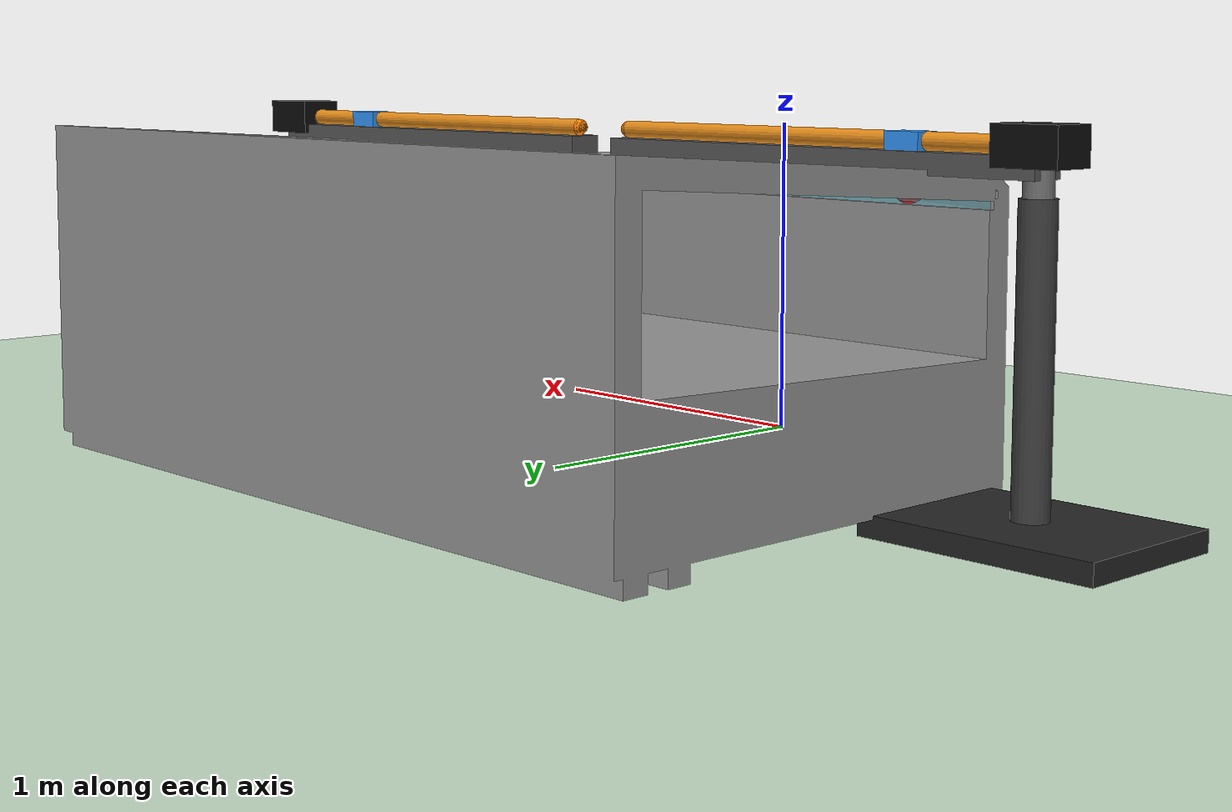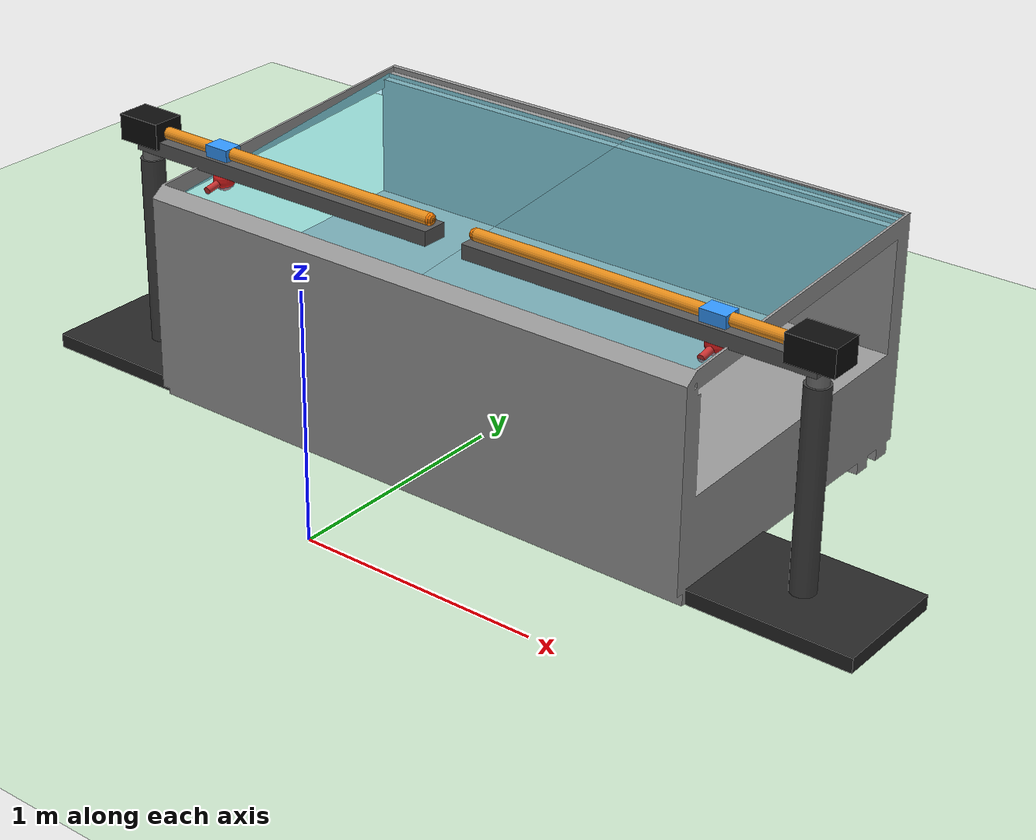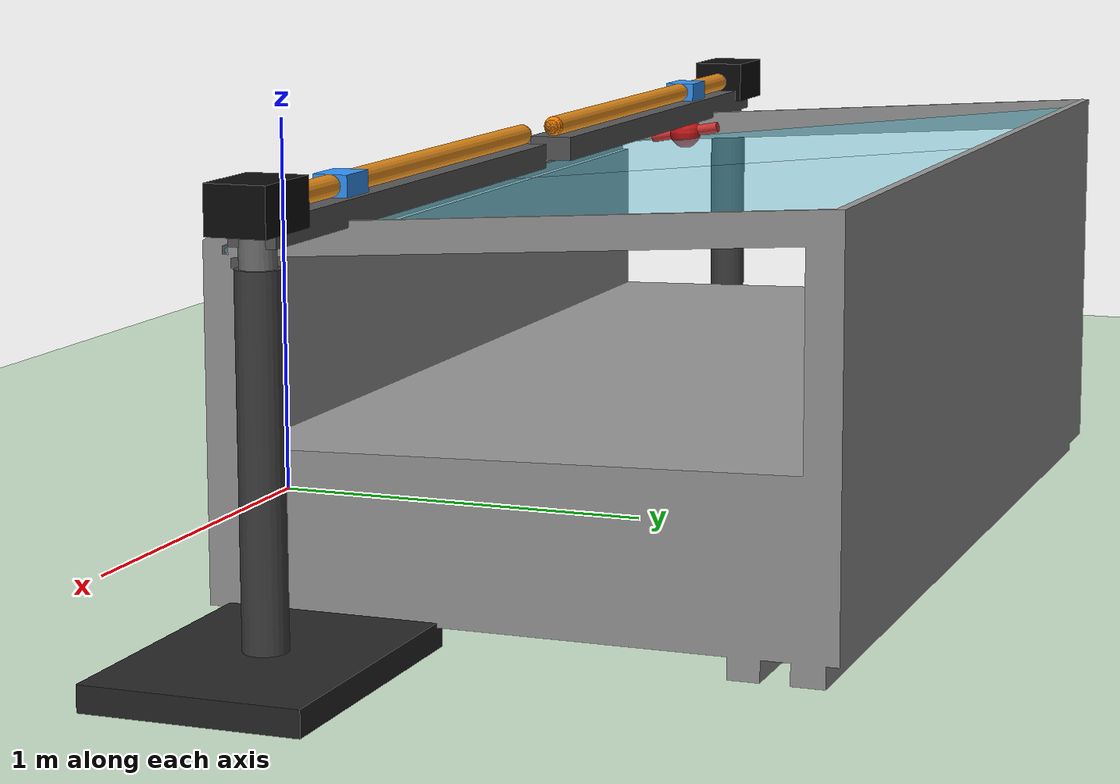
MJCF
<mujoco model="Test_sliding_door_linear_actuation_system">

  <option timestep="0.002" gravity="0 0 -9.81"/>
  <compiler angle="radian"/>

  <asset>
    <!-- Banco frigo con porte scorrevoli -->
    <mesh name="frigo_mesh" file="athen_xl_corpo.obj"/>
    <mesh name="porta_sx_mesh" file="athen_xl_portasx.obj"/>
    <mesh name="porta_dx_mesh" file="athen_xl_portadx.obj"/>
  </asset>

  <worldbody>
    <geom name="pavimento" type="plane" size="5 5 0.1" rgba="0.8 0.9 0.8 1"/>
    <light directional="true" diffuse="0.8 0.8 0.8" specular="0.2 0.2 0.2" pos="0 0 5" dir="0 0 -1" castshadow="false"/>

    <!-- Sistema meccanico lineare porta sinistra -->
    <body name="sistema_lineare_sx" pos="-1.50 0.75 0">

      <geom name="base_meccanica_sx" type="box" pos="0 0 0.03" size="0.35 0.25 0.03" rgba="0.15 0.15 0.15 1" contype="0" conaffinity="0"/>
      <geom name="colonna_fissa_sx" type="cylinder" pos="0 0 0.45" size="0.05 0.42" rgba="0.25 0.25 0.25 1" contype="0" conaffinity="0"/>

      <body name="colonna_regolabile_sx" pos="0 0 1.00">
        <inertial pos="0 0 -0.25" mass="4.0" diaginertia="0.08 0.08 0.02"/>
        <geom name="colonna_mobile_sx" type="cylinder" pos="0 0 -0.25" size="0.04 0.30" rgba="0.45 0.45 0.45 1" contype="0" conaffinity="0"/>

        <body name="testa_lineare_sx" pos="0 0 0">
          <inertial pos="0.70 0 0" mass="3.0" diaginertia="0.04 0.04 0.03"/>
          <geom name="corpo_motore_lineare_sx" type="box" pos="0 0 0" size="0.10 0.07 0.055" rgba="0.05 0.05 0.05 1" contype="0" conaffinity="0"/>
          <site name="inizio_guida_lineare_sx" pos="0 0 0" size="0.035" rgba="0 0 1 1"/>

          <!-- Guida lineare nella direzione di apertura della porta sinistra -->
          <body name="guida_lineare_sx_body" pos="0 0 0">
            <inertial pos="0.70 0 0" mass="2.5" diaginertia="0.08 0.08 0.006"/>
            <geom name="guida_lineare_sx" type="capsule" fromto="0 0 0 1.45 0 0" size="0.025" rgba="0.9 0.55 0.1 1" contype="0" conaffinity="0"/>
            <geom name="corpo_attuatore_lineare_sx" type="box" pos="0.725 0 -0.055" size="0.75 0.055 0.03" rgba="0.35 0.35 0.35 1" contype="0" conaffinity="0"/>
            <site name="fine_guida_lineare_sx" pos="1.45 0 0" size="0.025" rgba="1 0.5 0 1"/>

            <body name="carrello_lineare_sx" pos="0.40 0 0">
              <joint name="attuatore_lineare_sx" type="slide" axis="1 0 0" range="0 1.06" limited="true" damping="20" frictionloss="2"/>

              <inertial pos="0 0 0" mass="0.8" diaginertia="0.004 0.004 0.002"/>
              <geom name="carrello_visual_sx" type="box" pos="0 0 0" size="0.055 0.04 0.025" rgba="0.2 0.6 1 1" contype="0" conaffinity="0"/>

              <!-- Stelo verticale corto verso la maniglia -->
              <geom name="stelo_verticale_sx" type="capsule" fromto="0 0 0 0 0 -0.12" size="0.018" rgba="0.75 0.75 0.75 1" contype="0" conaffinity="0"/>

              <body name="giunto_allineamento_lineare_sx" pos="0 0 -0.12">
                <joint name="snodo_allineamento_lineare_sx" type="ball" damping="0.1"/>

                <inertial pos="0 0 0" mass="0.4" diaginertia="0.002 0.002 0.002"/>
                <geom name="snodo_allineamento_visual_sx" type="sphere" pos="0 0 0" size="0.035" rgba="0.1 0.6 1 1" contype="0" conaffinity="0"/>

                <body name="end_effector_lineare_sx" pos="0 0 0">
                  <inertial pos="0 0 0" mass="0.3" diaginertia="0.001 0.001 0.001"/>
                  <geom name="end_effector_visual_sx" type="sphere" pos="0 0 0" size="0.045" rgba="0.8 0.1 0.1 1" contype="0" conaffinity="0"/>
                  <site name="punto_presa_lineare_sx" pos="0 0 0" size="0.03" rgba="1 0 0 1"/>
                </body>
              </body>
            </body>
          </body>
        </body>
      </body>
    </body>

    <!-- Sistema meccanico lineare porta destra -->
    <body name="sistema_lineare_dx" pos="1.62 0.75 0">

      <geom name="base_meccanica_dx" type="box" pos="0 0 0.03" size="0.35 0.25 0.03" rgba="0.15 0.15 0.15 1" contype="0" conaffinity="0"/>
      <geom name="colonna_fissa_dx" type="cylinder" pos="0 0 0.45" size="0.05 0.42" rgba="0.25 0.25 0.25 1" contype="0" conaffinity="0"/>

      <body name="colonna_regolabile_dx" pos="0 0 1.00">
        <inertial pos="0 0 -0.25" mass="4.0" diaginertia="0.08 0.08 0.02"/>
        <geom name="colonna_mobile_dx" type="cylinder" pos="0 0 -0.25" size="0.04 0.30" rgba="0.45 0.45 0.45 1" contype="0" conaffinity="0"/>

        <body name="testa_lineare_dx" pos="0 0 0">
          <inertial pos="-0.70 0 0" mass="3.0" diaginertia="0.04 0.04 0.03"/>
          <geom name="corpo_motore_lineare_dx" type="box" pos="0 0 0" size="0.10 0.07 0.055" rgba="0.05 0.05 0.05 1" contype="0" conaffinity="0"/>
          <site name="inizio_guida_lineare_dx" pos="0 0 0" size="0.035" rgba="0 0 1 1"/>

          <body name="guida_lineare_dx_body" pos="0 0 0">
            <inertial pos="-0.70 0 0" mass="2.5" diaginertia="0.08 0.08 0.006"/>
            <geom name="guida_lineare_dx" type="capsule" fromto="0 0 0 -1.45 0 0" size="0.025" rgba="0.9 0.55 0.1 1" contype="0" conaffinity="0"/>
            <geom name="corpo_attuatore_lineare_dx" type="box" pos="-0.725 0 -0.055" size="0.75 0.055 0.03" rgba="0.35 0.35 0.35 1" contype="0" conaffinity="0"/>
            <site name="fine_guida_lineare_dx" pos="-1.45 0 0" size="0.025" rgba="1 0.5 0 1"/>

            <body name="carrello_lineare_dx" pos="-0.40 0 0">
              <joint name="attuatore_lineare_dx" type="slide" axis="-1 0 0" range="0 1.06" limited="true" damping="20" frictionloss="2"/>

              <inertial pos="0 0 0" mass="0.8" diaginertia="0.004 0.004 0.002"/>
              <geom name="carrello_visual_dx" type="box" pos="0 0 0" size="0.055 0.04 0.025" rgba="0.2 0.6 1 1" contype="0" conaffinity="0"/>

              <geom name="stelo_verticale_dx" type="capsule" fromto="0 0 0 0 0 -0.11" size="0.018" rgba="0.75 0.75 0.75 1" contype="0" conaffinity="0"/>

              <body name="giunto_allineamento_lineare_dx" pos="0 0 -0.11">
                <joint name="snodo_allineamento_lineare_dx" type="ball" damping="0.1"/>

                <inertial pos="0 0 0" mass="0.4" diaginertia="0.002 0.002 0.002"/>
                <geom name="snodo_allineamento_visual_dx" type="sphere" pos="0 0 0" size="0.035" rgba="0.1 0.6 1 1" contype="0" conaffinity="0"/>

                <body name="end_effector_lineare_dx" pos="0 0 0">
                  <inertial pos="0 0 0" mass="0.3" diaginertia="0.001 0.001 0.001"/>
                  <geom name="end_effector_visual_dx" type="sphere" pos="0 0 0" size="0.045" rgba="0.8 0.1 0.1 1" contype="0" conaffinity="0"/>
                  <site name="punto_presa_lineare_dx" pos="0 0 0" size="0.03" rgba="1 0 0 1"/>
                </body>
              </body>
            </body>
          </body>
        </body>
      </body>
    </body>

    <!-- Banco frigo con porte scorrevoli: invariato -->
    <body name="banco_frigo" pos="-1.2 0.45 0">
      <geom type="mesh" mesh="frigo_mesh" rgba="0.6 0.6 0.6 1" contype="0" conaffinity="0"/>

      <body name="porta_sx" pos="0 0 0">
        <joint name="slide_sx" type="slide" axis="1 0 0" range="0 1.06" limited="true" damping="30" frictionloss="41.9"/>
        <inertial pos="0.65 0.7 0.9" mass="12" diaginertia="0.9801 1.5376 2.5177"/>
        <geom type="mesh" mesh="porta_sx_mesh" rgba="0.3 0.8 0.9 0.4" contype="0" conaffinity="0"/>

        <body name="maniglia_sx" pos="0.1 0.3 0.88" euler="1.75 0 0">
          <inertial pos="0 0 0" mass="0.2" diaginertia="0.001 0.001 0.001"/>
          <geom name="manigliasx" type="cylinder" size="0.015 0.1" rgba="0.8 0.2 0.2 1" contype="0" conaffinity="0"/>
          <site name="target_manigliasx" pos="0 0 0" size="0.02" rgba="1 0 0 0.5"/>
        </body>
      </body>

      <body name="porta_dx" pos="0 0 0">
        <joint name="slide_dx" type="slide" axis="-1 0 0" range="0 1.06" limited="true" damping="30" frictionloss="41.9"/>
        <inertial pos="1.85 0.7 0.9" mass="12" diaginertia="0.9801 1.5376 2.5177"/>
        <geom type="mesh" mesh="porta_dx_mesh" rgba="0.3 0.8 0.9 0.4" contype="0" conaffinity="0"/>

        <body name="maniglia_dx" pos="2.42 0.3 0.89" euler="1.75 0 0">
          <inertial pos="0 0 0" mass="0.2" diaginertia="0.001 0.001 0.001"/>
          <geom name="manigliadx" type="cylinder" size="0.015 0.1" rgba="0.8 0.2 0.2 1" contype="0" conaffinity="0"/>
          <site name="target_manigliadx" pos="0 0 0" size="0.02" rgba="1 0 0 0.5"/>
        </body>
      </body>
    </body>
  </worldbody>

  <equality>
    <connect name="presa_lineare_maniglia_sx"
             site1="punto_presa_lineare_sx"
             site2="target_manigliasx"
             solimp="0.85 0.95 0.002"
             solref="0.03 1"/>

    <connect name="presa_lineare_maniglia_dx"
             site1="punto_presa_lineare_dx"
             site2="target_manigliadx"
             solimp="0.85 0.95 0.002"
             solref="0.03 1"/>
  </equality>

  <actuator>
    <motor name="motore_lineare_sx" joint="attuatore_lineare_sx" gear="1" ctrllimited="true" ctrlrange="-800 800"/>
    <motor name="motore_lineare_dx" joint="attuatore_lineare_dx" gear="1" ctrllimited="true" ctrlrange="-800 800"/>
  </actuator>

</mujoco>
